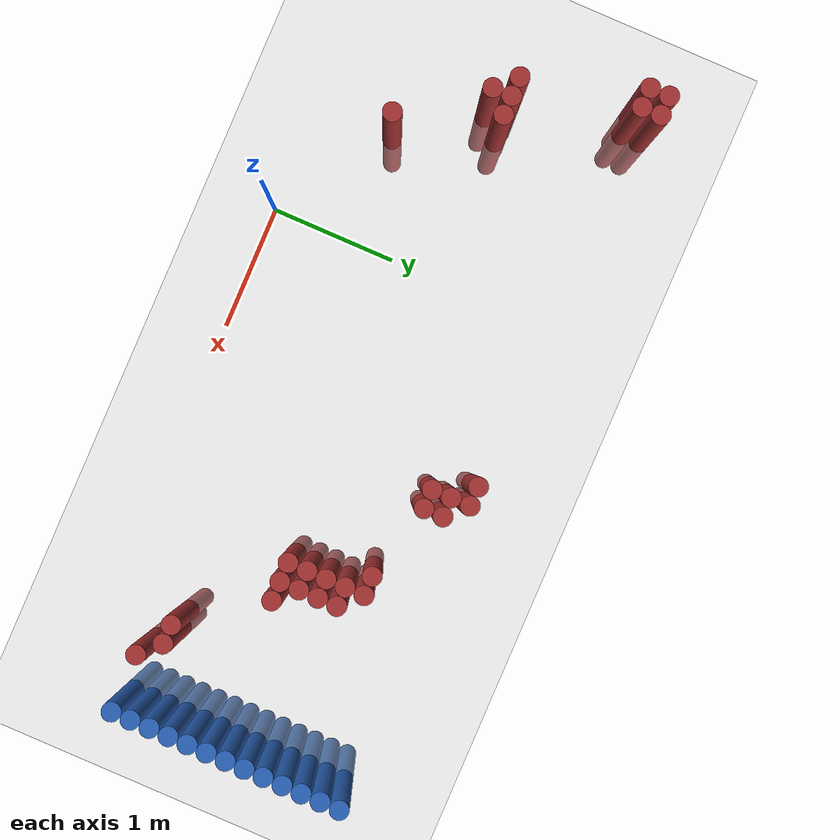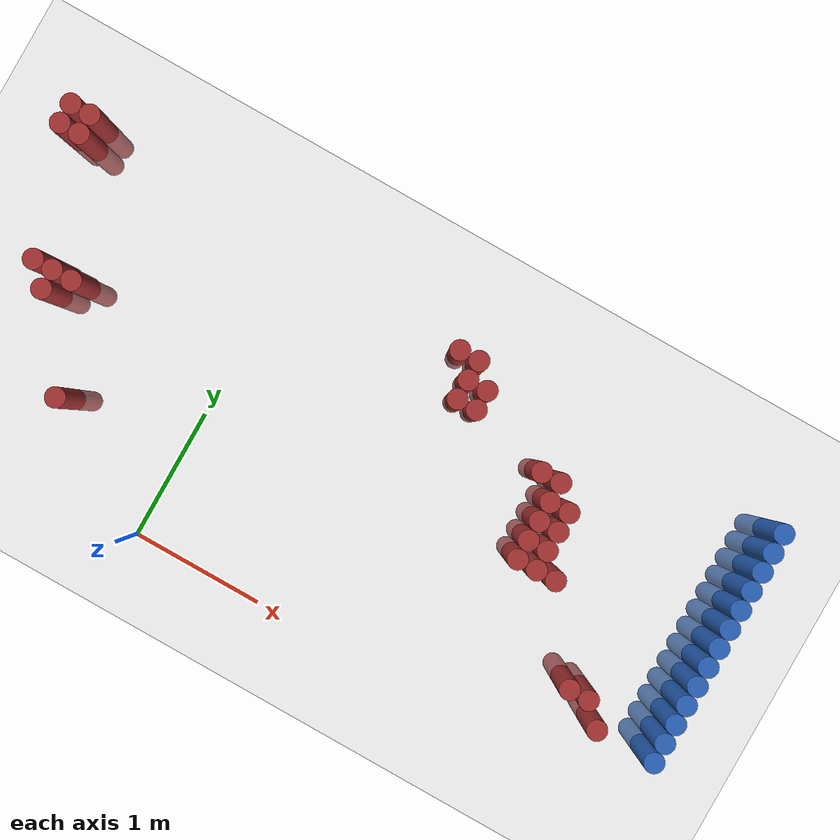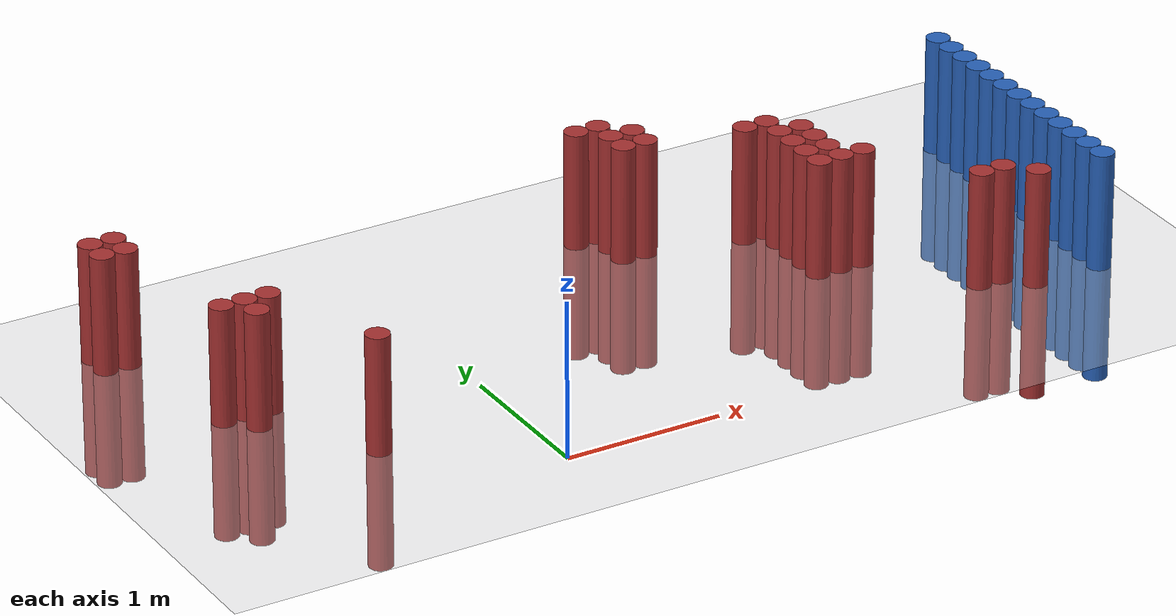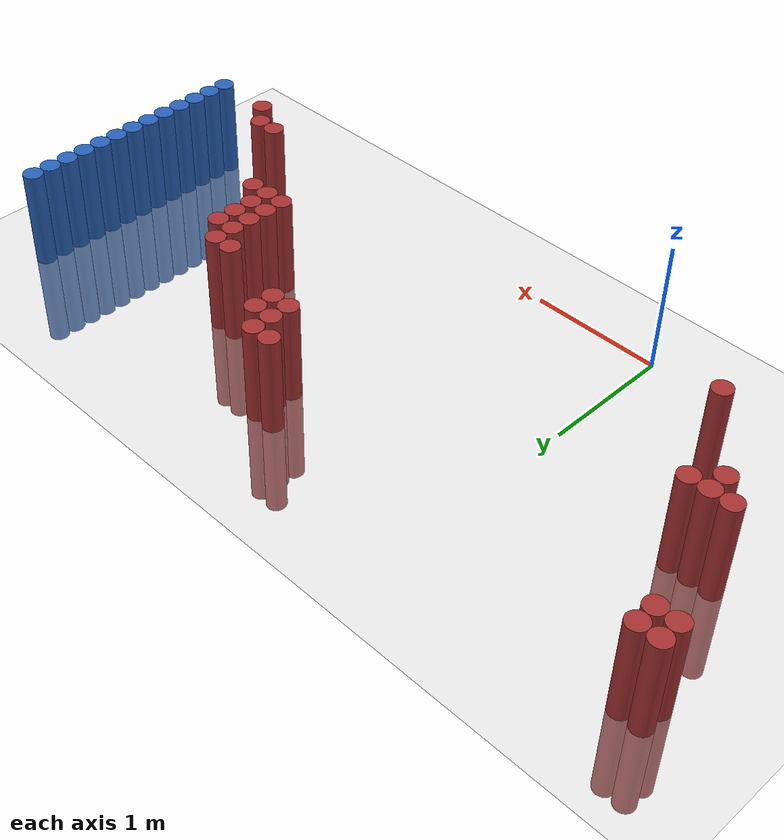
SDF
<sdf version="1.6">
 <world name="default">
  <model name="ground_plane">
   <static>1</static>
   <link name="link">
    <collision name="collision">
     <geometry><plane><normal>0 0 1</normal><size>100 100</size></plane></geometry>
     <surface><friction><ode><mu>100</mu><mu2>50</mu2></ode></friction></surface>
    </collision>
    <visual name="visual">
     <cast_shadows>0</cast_shadows>
     <geometry><plane><normal>0 0 1</normal><size>100 100</size></plane></geometry>
     <material>
      <script><uri>file://media/materials/scripts/gazebo.material</uri><name>Gazebo/Grey</name></script>
     </material>
    </visual>
   </link>
  </model>
  <model name="unit_cylinder_122">
   <static>1</static>
   <pose>3.925000 0.625000 0.000000 0.000000 0.000000 0.000000</pose>
   <link name="link">
    <inertial>
     <mass>1</mass>
     <inertia><ixx>0.145833</ixx><ixy>0</ixy><ixz>0</ixz><iyy>0.145833</iyy><iyz>0</iyz><izz>0.125</izz></inertia>
    </inertial>
    <collision name="collision">
     <geometry><cylinder><radius>0.075000</radius><length>1.5</length></cylinder></geometry>
    </collision>
    <visual name="visual">
     <geometry><cylinder><radius>0.075000</radius><length>1.5</length></cylinder></geometry>
     <material>
      <ambient>0.152000 0.379000 0.720000 1</ambient>
      <diffuse>0.152000 0.379000 0.720000 1</diffuse>
     </material>
     <material>
      <script><name>Gazebo/Grey</name><uri>file://media/materials/scripts/gazebo.material</uri></script>
     </material>
    </visual>
   </link>
  </model>
  <model name="unit_cylinder_124">
   <static>1</static>
   <pose>3.925000 0.775000 0.000000 0.000000 0.000000 0.000000</pose>
   <link name="link">
    <inertial>
     <mass>1</mass>
     <inertia><ixx>0.145833</ixx><ixy>0</ixy><ixz>0</ixz><iyy>0.145833</iyy><iyz>0</iyz><izz>0.125</izz></inertia>
    </inertial>
    <collision name="collision">
     <geometry><cylinder><radius>0.075000</radius><length>1.5</length></cylinder></geometry>
    </collision>
    <visual name="visual">
     <geometry><cylinder><radius>0.075000</radius><length>1.5</length></cylinder></geometry>
     <material>
      <ambient>0.152000 0.379000 0.720000 1</ambient>
      <diffuse>0.152000 0.379000 0.720000 1</diffuse>
     </material>
     <material>
      <script><name>Gazebo/Grey</name><uri>file://media/materials/scripts/gazebo.material</uri></script>
     </material>
    </visual>
   </link>
  </model>
  <model name="unit_cylinder_126">
   <static>1</static>
   <pose>3.925000 0.925000 0.000000 0.000000 0.000000 0.000000</pose>
   <link name="link">
    <inertial>
     <mass>1</mass>
     <inertia><ixx>0.145833</ixx><ixy>0</ixy><ixz>0</ixz><iyy>0.145833</iyy><iyz>0</iyz><izz>0.125</izz></inertia>
    </inertial>
    <collision name="collision">
     <geometry><cylinder><radius>0.075000</radius><length>1.5</length></cylinder></geometry>
    </collision>
    <visual name="visual">
     <geometry><cylinder><radius>0.075000</radius><length>1.5</length></cylinder></geometry>
     <material>
      <ambient>0.152000 0.379000 0.720000 1</ambient>
      <diffuse>0.152000 0.379000 0.720000 1</diffuse>
     </material>
     <material>
      <script><name>Gazebo/Grey</name><uri>file://media/materials/scripts/gazebo.material</uri></script>
     </material>
    </visual>
   </link>
  </model>
  <model name="unit_cylinder_128">
   <static>1</static>
   <pose>3.925000 1.075000 0.000000 0.000000 0.000000 0.000000</pose>
   <link name="link">
    <inertial>
     <mass>1</mass>
     <inertia><ixx>0.145833</ixx><ixy>0</ixy><ixz>0</ixz><iyy>0.145833</iyy><iyz>0</iyz><izz>0.125</izz></inertia>
    </inertial>
    <collision name="collision">
     <geometry><cylinder><radius>0.075000</radius><length>1.5</length></cylinder></geometry>
    </collision>
    <visual name="visual">
     <geometry><cylinder><radius>0.075000</radius><length>1.5</length></cylinder></geometry>
     <material>
      <ambient>0.152000 0.379000 0.720000 1</ambient>
      <diffuse>0.152000 0.379000 0.720000 1</diffuse>
     </material>
     <material>
      <script><name>Gazebo/Grey</name><uri>file://media/materials/scripts/gazebo.material</uri></script>
     </material>
    </visual>
   </link>
  </model>
  <model name="unit_cylinder_130">
   <static>1</static>
   <pose>3.925000 1.225000 0.000000 0.000000 0.000000 0.000000</pose>
   <link name="link">
    <inertial>
     <mass>1</mass>
     <inertia><ixx>0.145833</ixx><ixy>0</ixy><ixz>0</ixz><iyy>0.145833</iyy><iyz>0</iyz><izz>0.125</izz></inertia>
    </inertial>
    <collision name="collision">
     <geometry><cylinder><radius>0.075000</radius><length>1.5</length></cylinder></geometry>
    </collision>
    <visual name="visual">
     <geometry><cylinder><radius>0.075000</radius><length>1.5</length></cylinder></geometry>
     <material>
      <ambient>0.152000 0.379000 0.720000 1</ambient>
      <diffuse>0.152000 0.379000 0.720000 1</diffuse>
     </material>
     <material>
      <script><name>Gazebo/Grey</name><uri>file://media/materials/scripts/gazebo.material</uri></script>
     </material>
    </visual>
   </link>
  </model>
  <model name="unit_cylinder_132">
   <static>1</static>
   <pose>3.925000 1.375000 0.000000 0.000000 0.000000 0.000000</pose>
   <link name="link">
    <inertial>
     <mass>1</mass>
     <inertia><ixx>0.145833</ixx><ixy>0</ixy><ixz>0</ixz><iyy>0.145833</iyy><iyz>0</iyz><izz>0.125</izz></inertia>
    </inertial>
    <collision name="collision">
     <geometry><cylinder><radius>0.075000</radius><length>1.5</length></cylinder></geometry>
    </collision>
    <visual name="visual">
     <geometry><cylinder><radius>0.075000</radius><length>1.5</length></cylinder></geometry>
     <material>
      <ambient>0.152000 0.379000 0.720000 1</ambient>
      <diffuse>0.152000 0.379000 0.720000 1</diffuse>
     </material>
     <material>
      <script><name>Gazebo/Grey</name><uri>file://media/materials/scripts/gazebo.material</uri></script>
     </material>
    </visual>
   </link>
  </model>
  <model name="unit_cylinder_134">
   <static>1</static>
   <pose>3.925000 1.525000 0.000000 0.000000 0.000000 0.000000</pose>
   <link name="link">
    <inertial>
     <mass>1</mass>
     <inertia><ixx>0.145833</ixx><ixy>0</ixy><ixz>0</ixz><iyy>0.145833</iyy><iyz>0</iyz><izz>0.125</izz></inertia>
    </inertial>
    <collision name="collision">
     <geometry><cylinder><radius>0.075000</radius><length>1.5</length></cylinder></geometry>
    </collision>
    <visual name="visual">
     <geometry><cylinder><radius>0.075000</radius><length>1.5</length></cylinder></geometry>
     <material>
      <ambient>0.152000 0.379000 0.720000 1</ambient>
      <diffuse>0.152000 0.379000 0.720000 1</diffuse>
     </material>
     <material>
      <script><name>Gazebo/Grey</name><uri>file://media/materials/scripts/gazebo.material</uri></script>
     </material>
    </visual>
   </link>
  </model>
  <model name="unit_cylinder_136">
   <static>1</static>
   <pose>3.925000 1.675000 0.000000 0.000000 0.000000 0.000000</pose>
   <link name="link">
    <inertial>
     <mass>1</mass>
     <inertia><ixx>0.145833</ixx><ixy>0</ixy><ixz>0</ixz><iyy>0.145833</iyy><iyz>0</iyz><izz>0.125</izz></inertia>
    </inertial>
    <collision name="collision">
     <geometry><cylinder><radius>0.075000</radius><length>1.5</length></cylinder></geometry>
    </collision>
    <visual name="visual">
     <geometry><cylinder><radius>0.075000</radius><length>1.5</length></cylinder></geometry>
     <material>
      <ambient>0.152000 0.379000 0.720000 1</ambient>
      <diffuse>0.152000 0.379000 0.720000 1</diffuse>
     </material>
     <material>
      <script><name>Gazebo/Grey</name><uri>file://media/materials/scripts/gazebo.material</uri></script>
     </material>
    </visual>
   </link>
  </model>
  <model name="unit_cylinder_138">
   <static>1</static>
   <pose>3.925000 1.825000 0.000000 0.000000 0.000000 0.000000</pose>
   <link name="link">
    <inertial>
     <mass>1</mass>
     <inertia><ixx>0.145833</ixx><ixy>0</ixy><ixz>0</ixz><iyy>0.145833</iyy><iyz>0</iyz><izz>0.125</izz></inertia>
    </inertial>
    <collision name="collision">
     <geometry><cylinder><radius>0.075000</radius><length>1.5</length></cylinder></geometry>
    </collision>
    <visual name="visual">
     <geometry><cylinder><radius>0.075000</radius><length>1.5</length></cylinder></geometry>
     <material>
      <ambient>0.152000 0.379000 0.720000 1</ambient>
      <diffuse>0.152000 0.379000 0.720000 1</diffuse>
     </material>
     <material>
      <script><name>Gazebo/Grey</name><uri>file://media/materials/scripts/gazebo.material</uri></script>
     </material>
    </visual>
   </link>
  </model>
  <model name="unit_cylinder_140">
   <static>1</static>
   <pose>3.925000 1.975000 0.000000 0.000000 0.000000 0.000000</pose>
   <link name="link">
    <inertial>
     <mass>1</mass>
     <inertia><ixx>0.145833</ixx><ixy>0</ixy><ixz>0</ixz><iyy>0.145833</iyy><iyz>0</iyz><izz>0.125</izz></inertia>
    </inertial>
    <collision name="collision">
     <geometry><cylinder><radius>0.075000</radius><length>1.5</length></cylinder></geometry>
    </collision>
    <visual name="visual">
     <geometry><cylinder><radius>0.075000</radius><length>1.5</length></cylinder></geometry>
     <material>
      <ambient>0.152000 0.379000 0.720000 1</ambient>
      <diffuse>0.152000 0.379000 0.720000 1</diffuse>
     </material>
     <material>
      <script><name>Gazebo/Grey</name><uri>file://media/materials/scripts/gazebo.material</uri></script>
     </material>
    </visual>
   </link>
  </model>
  <model name="unit_cylinder_142">
   <static>1</static>
   <pose>3.925000 2.125000 0.000000 0.000000 0.000000 0.000000</pose>
   <link name="link">
    <inertial>
     <mass>1</mass>
     <inertia><ixx>0.145833</ixx><ixy>0</ixy><ixz>0</ixz><iyy>0.145833</iyy><iyz>0</iyz><izz>0.125</izz></inertia>
    </inertial>
    <collision name="collision">
     <geometry><cylinder><radius>0.075000</radius><length>1.5</length></cylinder></geometry>
    </collision>
    <visual name="visual">
     <geometry><cylinder><radius>0.075000</radius><length>1.5</length></cylinder></geometry>
     <material>
      <ambient>0.152000 0.379000 0.720000 1</ambient>
      <diffuse>0.152000 0.379000 0.720000 1</diffuse>
     </material>
     <material>
      <script><name>Gazebo/Grey</name><uri>file://media/materials/scripts/gazebo.material</uri></script>
     </material>
    </visual>
   </link>
  </model>
  <model name="unit_cylinder_144">
   <static>1</static>
   <pose>3.925000 2.275000 0.000000 0.000000 0.000000 0.000000</pose>
   <link name="link">
    <inertial>
     <mass>1</mass>
     <inertia><ixx>0.145833</ixx><ixy>0</ixy><ixz>0</ixz><iyy>0.145833</iyy><iyz>0</iyz><izz>0.125</izz></inertia>
    </inertial>
    <collision name="collision">
     <geometry><cylinder><radius>0.075000</radius><length>1.5</length></cylinder></geometry>
    </collision>
    <visual name="visual">
     <geometry><cylinder><radius>0.075000</radius><length>1.5</length></cylinder></geometry>
     <material>
      <ambient>0.152000 0.379000 0.720000 1</ambient>
      <diffuse>0.152000 0.379000 0.720000 1</diffuse>
     </material>
     <material>
      <script><name>Gazebo/Grey</name><uri>file://media/materials/scripts/gazebo.material</uri></script>
     </material>
    </visual>
   </link>
  </model>
  <model name="unit_cylinder_305">
   <static>1</static>
   <pose>-1.775000 2.275000 0.000000 0.000000 0.000000 0.000000</pose>
   <link name="link">
    <inertial>
     <mass>1</mass>
     <inertia><ixx>0.145833</ixx><ixy>0</ixy><ixz>0</ixz><iyy>0.145833</iyy><iyz>0</iyz><izz>0.125</izz></inertia>
    </inertial>
    <collision name="collision">
     <geometry><cylinder><radius>0.075000</radius><length>1.5</length></cylinder></geometry>
    </collision>
    <visual name="visual">
     <geometry><cylinder><radius>0.075000</radius><length>1.5</length></cylinder></geometry>
     <material>
      <ambient>0.648000 0.192000 0.192000 1</ambient>
      <diffuse>0.648000 0.192000 0.192000 1</diffuse>
     </material>
     <material>
      <script><name>Gazebo/Grey</name><uri>file://media/materials/scripts/gazebo.material</uri></script>
     </material>
    </visual>
   </link>
  </model>
  <model name="unit_cylinder_306">
   <static>1</static>
   <pose>-1.775000 2.425000 0.000000 0.000000 0.000000 0.000000</pose>
   <link name="link">
    <inertial>
     <mass>1</mass>
     <inertia><ixx>0.145833</ixx><ixy>0</ixy><ixz>0</ixz><iyy>0.145833</iyy><iyz>0</iyz><izz>0.125</izz></inertia>
    </inertial>
    <collision name="collision">
     <geometry><cylinder><radius>0.075000</radius><length>1.5</length></cylinder></geometry>
    </collision>
    <visual name="visual">
     <geometry><cylinder><radius>0.075000</radius><length>1.5</length></cylinder></geometry>
     <material>
      <ambient>0.648000 0.192000 0.192000 1</ambient>
      <diffuse>0.648000 0.192000 0.192000 1</diffuse>
     </material>
     <material>
      <script><name>Gazebo/Grey</name><uri>file://media/materials/scripts/gazebo.material</uri></script>
     </material>
    </visual>
   </link>
  </model>
  <model name="unit_cylinder_310">
   <static>1</static>
   <pose>-1.625000 2.275000 0.000000 0.000000 0.000000 0.000000</pose>
   <link name="link">
    <inertial>
     <mass>1</mass>
     <inertia><ixx>0.145833</ixx><ixy>0</ixy><ixz>0</ixz><iyy>0.145833</iyy><iyz>0</iyz><izz>0.125</izz></inertia>
    </inertial>
    <collision name="collision">
     <geometry><cylinder><radius>0.075000</radius><length>1.5</length></cylinder></geometry>
    </collision>
    <visual name="visual">
     <geometry><cylinder><radius>0.075000</radius><length>1.5</length></cylinder></geometry>
     <material>
      <ambient>0.648000 0.192000 0.192000 1</ambient>
      <diffuse>0.648000 0.192000 0.192000 1</diffuse>
     </material>
     <material>
      <script><name>Gazebo/Grey</name><uri>file://media/materials/scripts/gazebo.material</uri></script>
     </material>
    </visual>
   </link>
  </model>
  <model name="unit_cylinder_311">
   <static>1</static>
   <pose>-1.625000 2.425000 0.000000 0.000000 0.000000 0.000000</pose>
   <link name="link">
    <inertial>
     <mass>1</mass>
     <inertia><ixx>0.145833</ixx><ixy>0</ixy><ixz>0</ixz><iyy>0.145833</iyy><iyz>0</iyz><izz>0.125</izz></inertia>
    </inertial>
    <collision name="collision">
     <geometry><cylinder><radius>0.075000</radius><length>1.5</length></cylinder></geometry>
    </collision>
    <visual name="visual">
     <geometry><cylinder><radius>0.075000</radius><length>1.5</length></cylinder></geometry>
     <material>
      <ambient>0.648000 0.192000 0.192000 1</ambient>
      <diffuse>0.648000 0.192000 0.192000 1</diffuse>
     </material>
     <material>
      <script><name>Gazebo/Grey</name><uri>file://media/materials/scripts/gazebo.material</uri></script>
     </material>
    </visual>
   </link>
  </model>
  <model name="unit_cylinder_316">
   <static>1</static>
   <pose>-1.475000 1.375000 0.000000 0.000000 0.000000 0.000000</pose>
   <link name="link">
    <inertial>
     <mass>1</mass>
     <inertia><ixx>0.145833</ixx><ixy>0</ixy><ixz>0</ixz><iyy>0.145833</iyy><iyz>0</iyz><izz>0.125</izz></inertia>
    </inertial>
    <collision name="collision">
     <geometry><cylinder><radius>0.075000</radius><length>1.5</length></cylinder></geometry>
    </collision>
    <visual name="visual">
     <geometry><cylinder><radius>0.075000</radius><length>1.5</length></cylinder></geometry>
     <material>
      <ambient>0.648000 0.192000 0.192000 1</ambient>
      <diffuse>0.648000 0.192000 0.192000 1</diffuse>
     </material>
     <material>
      <script><name>Gazebo/Grey</name><uri>file://media/materials/scripts/gazebo.material</uri></script>
     </material>
    </visual>
   </link>
  </model>
  <model name="unit_cylinder_319">
   <static>1</static>
   <pose>-1.325000 1.225000 0.000000 0.000000 0.000000 0.000000</pose>
   <link name="link">
    <inertial>
     <mass>1</mass>
     <inertia><ixx>0.145833</ixx><ixy>0</ixy><ixz>0</ixz><iyy>0.145833</iyy><iyz>0</iyz><izz>0.125</izz></inertia>
    </inertial>
    <collision name="collision">
     <geometry><cylinder><radius>0.075000</radius><length>1.5</length></cylinder></geometry>
    </collision>
    <visual name="visual">
     <geometry><cylinder><radius>0.075000</radius><length>1.5</length></cylinder></geometry>
     <material>
      <ambient>0.648000 0.192000 0.192000 1</ambient>
      <diffuse>0.648000 0.192000 0.192000 1</diffuse>
     </material>
     <material>
      <script><name>Gazebo/Grey</name><uri>file://media/materials/scripts/gazebo.material</uri></script>
     </material>
    </visual>
   </link>
  </model>
  <model name="unit_cylinder_320">
   <static>1</static>
   <pose>-1.325000 1.375000 0.000000 0.000000 0.000000 0.000000</pose>
   <link name="link">
    <inertial>
     <mass>1</mass>
     <inertia><ixx>0.145833</ixx><ixy>0</ixy><ixz>0</ixz><iyy>0.145833</iyy><iyz>0</iyz><izz>0.125</izz></inertia>
    </inertial>
    <collision name="collision">
     <geometry><cylinder><radius>0.075000</radius><length>1.5</length></cylinder></geometry>
    </collision>
    <visual name="visual">
     <geometry><cylinder><radius>0.075000</radius><length>1.5</length></cylinder></geometry>
     <material>
      <ambient>0.648000 0.192000 0.192000 1</ambient>
      <diffuse>0.648000 0.192000 0.192000 1</diffuse>
     </material>
     <material>
      <script><name>Gazebo/Grey</name><uri>file://media/materials/scripts/gazebo.material</uri></script>
     </material>
    </visual>
   </link>
  </model>
  <model name="unit_cylinder_321">
   <static>1</static>
   <pose>-1.175000 1.375000 0.000000 0.000000 0.000000 0.000000</pose>
   <link name="link">
    <inertial>
     <mass>1</mass>
     <inertia><ixx>0.145833</ixx><ixy>0</ixy><ixz>0</ixz><iyy>0.145833</iyy><iyz>0</iyz><izz>0.125</izz></inertia>
    </inertial>
    <collision name="collision">
     <geometry><cylinder><radius>0.075000</radius><length>1.5</length></cylinder></geometry>
    </collision>
    <visual name="visual">
     <geometry><cylinder><radius>0.075000</radius><length>1.5</length></cylinder></geometry>
     <material>
      <ambient>0.648000 0.192000 0.192000 1</ambient>
      <diffuse>0.648000 0.192000 0.192000 1</diffuse>
     </material>
     <material>
      <script><name>Gazebo/Grey</name><uri>file://media/materials/scripts/gazebo.material</uri></script>
     </material>
    </visual>
   </link>
  </model>
  <model name="unit_cylinder_324">
   <static>1</static>
   <pose>-0.875000 0.625000 0.000000 0.000000 0.000000 0.000000</pose>
   <link name="link">
    <inertial>
     <mass>1</mass>
     <inertia><ixx>0.145833</ixx><ixy>0</ixy><ixz>0</ixz><iyy>0.145833</iyy><iyz>0</iyz><izz>0.125</izz></inertia>
    </inertial>
    <collision name="collision">
     <geometry><cylinder><radius>0.075000</radius><length>1.5</length></cylinder></geometry>
    </collision>
    <visual name="visual">
     <geometry><cylinder><radius>0.075000</radius><length>1.5</length></cylinder></geometry>
     <material>
      <ambient>0.648000 0.192000 0.192000 1</ambient>
      <diffuse>0.648000 0.192000 0.192000 1</diffuse>
     </material>
     <material>
      <script><name>Gazebo/Grey</name><uri>file://media/materials/scripts/gazebo.material</uri></script>
     </material>
    </visual>
   </link>
  </model>
  <model name="unit_cylinder_364">
   <static>1</static>
   <pose>1.375000 2.275000 0.000000 0.000000 0.000000 0.000000</pose>
   <link name="link">
    <inertial>
     <mass>1</mass>
     <inertia><ixx>0.145833</ixx><ixy>0</ixy><ixz>0</ixz><iyy>0.145833</iyy><iyz>0</iyz><izz>0.125</izz></inertia>
    </inertial>
    <collision name="collision">
     <geometry><cylinder><radius>0.075000</radius><length>1.5</length></cylinder></geometry>
    </collision>
    <visual name="visual">
     <geometry><cylinder><radius>0.075000</radius><length>1.5</length></cylinder></geometry>
     <material>
      <ambient>0.648000 0.192000 0.192000 1</ambient>
      <diffuse>0.648000 0.192000 0.192000 1</diffuse>
     </material>
     <material>
      <script><name>Gazebo/Grey</name><uri>file://media/materials/scripts/gazebo.material</uri></script>
     </material>
    </visual>
   </link>
  </model>
  <model name="unit_cylinder_370">
   <static>1</static>
   <pose>1.525000 1.975000 0.000000 0.000000 0.000000 0.000000</pose>
   <link name="link">
    <inertial>
     <mass>1</mass>
     <inertia><ixx>0.145833</ixx><ixy>0</ixy><ixz>0</ixz><iyy>0.145833</iyy><iyz>0</iyz><izz>0.125</izz></inertia>
    </inertial>
    <collision name="collision">
     <geometry><cylinder><radius>0.075000</radius><length>1.5</length></cylinder></geometry>
    </collision>
    <visual name="visual">
     <geometry><cylinder><radius>0.075000</radius><length>1.5</length></cylinder></geometry>
     <material>
      <ambient>0.648000 0.192000 0.192000 1</ambient>
      <diffuse>0.648000 0.192000 0.192000 1</diffuse>
     </material>
     <material>
      <script><name>Gazebo/Grey</name><uri>file://media/materials/scripts/gazebo.material</uri></script>
     </material>
    </visual>
   </link>
  </model>
  <model name="unit_cylinder_371">
   <static>1</static>
   <pose>1.525000 2.125000 0.000000 0.000000 0.000000 0.000000</pose>
   <link name="link">
    <inertial>
     <mass>1</mass>
     <inertia><ixx>0.145833</ixx><ixy>0</ixy><ixz>0</ixz><iyy>0.145833</iyy><iyz>0</iyz><izz>0.125</izz></inertia>
    </inertial>
    <collision name="collision">
     <geometry><cylinder><radius>0.075000</radius><length>1.5</length></cylinder></geometry>
    </collision>
    <visual name="visual">
     <geometry><cylinder><radius>0.075000</radius><length>1.5</length></cylinder></geometry>
     <material>
      <ambient>0.648000 0.192000 0.192000 1</ambient>
      <diffuse>0.648000 0.192000 0.192000 1</diffuse>
     </material>
     <material>
      <script><name>Gazebo/Grey</name><uri>file://media/materials/scripts/gazebo.material</uri></script>
     </material>
    </visual>
   </link>
  </model>
  <model name="unit_cylinder_372">
   <static>1</static>
   <pose>1.525000 2.275000 0.000000 0.000000 0.000000 0.000000</pose>
   <link name="link">
    <inertial>
     <mass>1</mass>
     <inertia><ixx>0.145833</ixx><ixy>0</ixy><ixz>0</ixz><iyy>0.145833</iyy><iyz>0</iyz><izz>0.125</izz></inertia>
    </inertial>
    <collision name="collision">
     <geometry><cylinder><radius>0.075000</radius><length>1.5</length></cylinder></geometry>
    </collision>
    <visual name="visual">
     <geometry><cylinder><radius>0.075000</radius><length>1.5</length></cylinder></geometry>
     <material>
      <ambient>0.648000 0.192000 0.192000 1</ambient>
      <diffuse>0.648000 0.192000 0.192000 1</diffuse>
     </material>
     <material>
      <script><name>Gazebo/Grey</name><uri>file://media/materials/scripts/gazebo.material</uri></script>
     </material>
    </visual>
   </link>
  </model>
  <model name="unit_cylinder_376">
   <static>1</static>
   <pose>1.675000 1.975000 0.000000 0.000000 0.000000 0.000000</pose>
   <link name="link">
    <inertial>
     <mass>1</mass>
     <inertia><ixx>0.145833</ixx><ixy>0</ixy><ixz>0</ixz><iyy>0.145833</iyy><iyz>0</iyz><izz>0.125</izz></inertia>
    </inertial>
    <collision name="collision">
     <geometry><cylinder><radius>0.075000</radius><length>1.5</length></cylinder></geometry>
    </collision>
    <visual name="visual">
     <geometry><cylinder><radius>0.075000</radius><length>1.5</length></cylinder></geometry>
     <material>
      <ambient>0.648000 0.192000 0.192000 1</ambient>
      <diffuse>0.648000 0.192000 0.192000 1</diffuse>
     </material>
     <material>
      <script><name>Gazebo/Grey</name><uri>file://media/materials/scripts/gazebo.material</uri></script>
     </material>
    </visual>
   </link>
  </model>
  <model name="unit_cylinder_377">
   <static>1</static>
   <pose>1.675000 2.125000 0.000000 0.000000 0.000000 0.000000</pose>
   <link name="link">
    <inertial>
     <mass>1</mass>
     <inertia><ixx>0.145833</ixx><ixy>0</ixy><ixz>0</ixz><iyy>0.145833</iyy><iyz>0</iyz><izz>0.125</izz></inertia>
    </inertial>
    <collision name="collision">
     <geometry><cylinder><radius>0.075000</radius><length>1.5</length></cylinder></geometry>
    </collision>
    <visual name="visual">
     <geometry><cylinder><radius>0.075000</radius><length>1.5</length></cylinder></geometry>
     <material>
      <ambient>0.648000 0.192000 0.192000 1</ambient>
      <diffuse>0.648000 0.192000 0.192000 1</diffuse>
     </material>
     <material>
      <script><name>Gazebo/Grey</name><uri>file://media/materials/scripts/gazebo.material</uri></script>
     </material>
    </visual>
   </link>
  </model>
  <model name="unit_cylinder_387">
   <static>1</static>
   <pose>2.275000 1.825000 0.000000 0.000000 0.000000 0.000000</pose>
   <link name="link">
    <inertial>
     <mass>1</mass>
     <inertia><ixx>0.145833</ixx><ixy>0</ixy><ixz>0</ixz><iyy>0.145833</iyy><iyz>0</iyz><izz>0.125</izz></inertia>
    </inertial>
    <collision name="collision">
     <geometry><cylinder><radius>0.075000</radius><length>1.5</length></cylinder></geometry>
    </collision>
    <visual name="visual">
     <geometry><cylinder><radius>0.075000</radius><length>1.5</length></cylinder></geometry>
     <material>
      <ambient>0.648000 0.192000 0.192000 1</ambient>
      <diffuse>0.648000 0.192000 0.192000 1</diffuse>
     </material>
     <material>
      <script><name>Gazebo/Grey</name><uri>file://media/materials/scripts/gazebo.material</uri></script>
     </material>
    </visual>
   </link>
  </model>
  <model name="unit_cylinder_389">
   <static>1</static>
   <pose>2.425000 1.225000 0.000000 0.000000 0.000000 0.000000</pose>
   <link name="link">
    <inertial>
     <mass>1</mass>
     <inertia><ixx>0.145833</ixx><ixy>0</ixy><ixz>0</ixz><iyy>0.145833</iyy><iyz>0</iyz><izz>0.125</izz></inertia>
    </inertial>
    <collision name="collision">
     <geometry><cylinder><radius>0.075000</radius><length>1.5</length></cylinder></geometry>
    </collision>
    <visual name="visual">
     <geometry><cylinder><radius>0.075000</radius><length>1.5</length></cylinder></geometry>
     <material>
      <ambient>0.648000 0.192000 0.192000 1</ambient>
      <diffuse>0.648000 0.192000 0.192000 1</diffuse>
     </material>
     <material>
      <script><name>Gazebo/Grey</name><uri>file://media/materials/scripts/gazebo.material</uri></script>
     </material>
    </visual>
   </link>
  </model>
  <model name="unit_cylinder_390">
   <static>1</static>
   <pose>2.425000 1.375000 0.000000 0.000000 0.000000 0.000000</pose>
   <link name="link">
    <inertial>
     <mass>1</mass>
     <inertia><ixx>0.145833</ixx><ixy>0</ixy><ixz>0</ixz><iyy>0.145833</iyy><iyz>0</iyz><izz>0.125</izz></inertia>
    </inertial>
    <collision name="collision">
     <geometry><cylinder><radius>0.075000</radius><length>1.5</length></cylinder></geometry>
    </collision>
    <visual name="visual">
     <geometry><cylinder><radius>0.075000</radius><length>1.5</length></cylinder></geometry>
     <material>
      <ambient>0.648000 0.192000 0.192000 1</ambient>
      <diffuse>0.648000 0.192000 0.192000 1</diffuse>
     </material>
     <material>
      <script><name>Gazebo/Grey</name><uri>file://media/materials/scripts/gazebo.material</uri></script>
     </material>
    </visual>
   </link>
  </model>
  <model name="unit_cylinder_391">
   <static>1</static>
   <pose>2.425000 1.525000 0.000000 0.000000 0.000000 0.000000</pose>
   <link name="link">
    <inertial>
     <mass>1</mass>
     <inertia><ixx>0.145833</ixx><ixy>0</ixy><ixz>0</ixz><iyy>0.145833</iyy><iyz>0</iyz><izz>0.125</izz></inertia>
    </inertial>
    <collision name="collision">
     <geometry><cylinder><radius>0.075000</radius><length>1.5</length></cylinder></geometry>
    </collision>
    <visual name="visual">
     <geometry><cylinder><radius>0.075000</radius><length>1.5</length></cylinder></geometry>
     <material>
      <ambient>0.648000 0.192000 0.192000 1</ambient>
      <diffuse>0.648000 0.192000 0.192000 1</diffuse>
     </material>
     <material>
      <script><name>Gazebo/Grey</name><uri>file://media/materials/scripts/gazebo.material</uri></script>
     </material>
    </visual>
   </link>
  </model>
  <model name="unit_cylinder_392">
   <static>1</static>
   <pose>2.425000 1.675000 0.000000 0.000000 0.000000 0.000000</pose>
   <link name="link">
    <inertial>
     <mass>1</mass>
     <inertia><ixx>0.145833</ixx><ixy>0</ixy><ixz>0</ixz><iyy>0.145833</iyy><iyz>0</iyz><izz>0.125</izz></inertia>
    </inertial>
    <collision name="collision">
     <geometry><cylinder><radius>0.075000</radius><length>1.5</length></cylinder></geometry>
    </collision>
    <visual name="visual">
     <geometry><cylinder><radius>0.075000</radius><length>1.5</length></cylinder></geometry>
     <material>
      <ambient>0.648000 0.192000 0.192000 1</ambient>
      <diffuse>0.648000 0.192000 0.192000 1</diffuse>
     </material>
     <material>
      <script><name>Gazebo/Grey</name><uri>file://media/materials/scripts/gazebo.material</uri></script>
     </material>
    </visual>
   </link>
  </model>
  <model name="unit_cylinder_393">
   <static>1</static>
   <pose>2.425000 1.825000 0.000000 0.000000 0.000000 0.000000</pose>
   <link name="link">
    <inertial>
     <mass>1</mass>
     <inertia><ixx>0.145833</ixx><ixy>0</ixy><ixz>0</ixz><iyy>0.145833</iyy><iyz>0</iyz><izz>0.125</izz></inertia>
    </inertial>
    <collision name="collision">
     <geometry><cylinder><radius>0.075000</radius><length>1.5</length></cylinder></geometry>
    </collision>
    <visual name="visual">
     <geometry><cylinder><radius>0.075000</radius><length>1.5</length></cylinder></geometry>
     <material>
      <ambient>0.648000 0.192000 0.192000 1</ambient>
      <diffuse>0.648000 0.192000 0.192000 1</diffuse>
     </material>
     <material>
      <script><name>Gazebo/Grey</name><uri>file://media/materials/scripts/gazebo.material</uri></script>
     </material>
    </visual>
   </link>
  </model>
  <model name="unit_cylinder_396">
   <static>1</static>
   <pose>2.575000 1.225000 0.000000 0.000000 0.000000 0.000000</pose>
   <link name="link">
    <inertial>
     <mass>1</mass>
     <inertia><ixx>0.145833</ixx><ixy>0</ixy><ixz>0</ixz><iyy>0.145833</iyy><iyz>0</iyz><izz>0.125</izz></inertia>
    </inertial>
    <collision name="collision">
     <geometry><cylinder><radius>0.075000</radius><length>1.5</length></cylinder></geometry>
    </collision>
    <visual name="visual">
     <geometry><cylinder><radius>0.075000</radius><length>1.5</length></cylinder></geometry>
     <material>
      <ambient>0.648000 0.192000 0.192000 1</ambient>
      <diffuse>0.648000 0.192000 0.192000 1</diffuse>
     </material>
     <material>
      <script><name>Gazebo/Grey</name><uri>file://media/materials/scripts/gazebo.material</uri></script>
     </material>
    </visual>
   </link>
  </model>
  <model name="unit_cylinder_397">
   <static>1</static>
   <pose>2.575000 1.375000 0.000000 0.000000 0.000000 0.000000</pose>
   <link name="link">
    <inertial>
     <mass>1</mass>
     <inertia><ixx>0.145833</ixx><ixy>0</ixy><ixz>0</ixz><iyy>0.145833</iyy><iyz>0</iyz><izz>0.125</izz></inertia>
    </inertial>
    <collision name="collision">
     <geometry><cylinder><radius>0.075000</radius><length>1.5</length></cylinder></geometry>
    </collision>
    <visual name="visual">
     <geometry><cylinder><radius>0.075000</radius><length>1.5</length></cylinder></geometry>
     <material>
      <ambient>0.648000 0.192000 0.192000 1</ambient>
      <diffuse>0.648000 0.192000 0.192000 1</diffuse>
     </material>
     <material>
      <script><name>Gazebo/Grey</name><uri>file://media/materials/scripts/gazebo.material</uri></script>
     </material>
    </visual>
   </link>
  </model>
  <model name="unit_cylinder_398">
   <static>1</static>
   <pose>2.575000 1.525000 0.000000 0.000000 0.000000 0.000000</pose>
   <link name="link">
    <inertial>
     <mass>1</mass>
     <inertia><ixx>0.145833</ixx><ixy>0</ixy><ixz>0</ixz><iyy>0.145833</iyy><iyz>0</iyz><izz>0.125</izz></inertia>
    </inertial>
    <collision name="collision">
     <geometry><cylinder><radius>0.075000</radius><length>1.5</length></cylinder></geometry>
    </collision>
    <visual name="visual">
     <geometry><cylinder><radius>0.075000</radius><length>1.5</length></cylinder></geometry>
     <material>
      <ambient>0.648000 0.192000 0.192000 1</ambient>
      <diffuse>0.648000 0.192000 0.192000 1</diffuse>
     </material>
     <material>
      <script><name>Gazebo/Grey</name><uri>file://media/materials/scripts/gazebo.material</uri></script>
     </material>
    </visual>
   </link>
  </model>
  <model name="unit_cylinder_399">
   <static>1</static>
   <pose>2.575000 1.675000 0.000000 0.000000 0.000000 0.000000</pose>
   <link name="link">
    <inertial>
     <mass>1</mass>
     <inertia><ixx>0.145833</ixx><ixy>0</ixy><ixz>0</ixz><iyy>0.145833</iyy><iyz>0</iyz><izz>0.125</izz></inertia>
    </inertial>
    <collision name="collision">
     <geometry><cylinder><radius>0.075000</radius><length>1.5</length></cylinder></geometry>
    </collision>
    <visual name="visual">
     <geometry><cylinder><radius>0.075000</radius><length>1.5</length></cylinder></geometry>
     <material>
      <ambient>0.648000 0.192000 0.192000 1</ambient>
      <diffuse>0.648000 0.192000 0.192000 1</diffuse>
     </material>
     <material>
      <script><name>Gazebo/Grey</name><uri>file://media/materials/scripts/gazebo.material</uri></script>
     </material>
    </visual>
   </link>
  </model>
  <model name="unit_cylinder_403">
   <static>1</static>
   <pose>2.725000 1.225000 0.000000 0.000000 0.000000 0.000000</pose>
   <link name="link">
    <inertial>
     <mass>1</mass>
     <inertia><ixx>0.145833</ixx><ixy>0</ixy><ixz>0</ixz><iyy>0.145833</iyy><iyz>0</iyz><izz>0.125</izz></inertia>
    </inertial>
    <collision name="collision">
     <geometry><cylinder><radius>0.075000</radius><length>1.5</length></cylinder></geometry>
    </collision>
    <visual name="visual">
     <geometry><cylinder><radius>0.075000</radius><length>1.5</length></cylinder></geometry>
     <material>
      <ambient>0.648000 0.192000 0.192000 1</ambient>
      <diffuse>0.648000 0.192000 0.192000 1</diffuse>
     </material>
     <material>
      <script><name>Gazebo/Grey</name><uri>file://media/materials/scripts/gazebo.material</uri></script>
     </material>
    </visual>
   </link>
  </model>
  <model name="unit_cylinder_410">
   <static>1</static>
   <pose>3.175000 0.625000 0.000000 0.000000 0.000000 0.000000</pose>
   <link name="link">
    <inertial>
     <mass>1</mass>
     <inertia><ixx>0.145833</ixx><ixy>0</ixy><ixz>0</ixz><iyy>0.145833</iyy><iyz>0</iyz><izz>0.125</izz></inertia>
    </inertial>
    <collision name="collision">
     <geometry><cylinder><radius>0.075000</radius><length>1.5</length></cylinder></geometry>
    </collision>
    <visual name="visual">
     <geometry><cylinder><radius>0.075000</radius><length>1.5</length></cylinder></geometry>
     <material>
      <ambient>0.648000 0.192000 0.192000 1</ambient>
      <diffuse>0.648000 0.192000 0.192000 1</diffuse>
     </material>
     <material>
      <script><name>Gazebo/Grey</name><uri>file://media/materials/scripts/gazebo.material</uri></script>
     </material>
    </visual>
   </link>
  </model>
  <model name="unit_cylinder_415">
   <static>1</static>
   <pose>3.325000 0.625000 0.000000 0.000000 0.000000 0.000000</pose>
   <link name="link">
    <inertial>
     <mass>1</mass>
     <inertia><ixx>0.145833</ixx><ixy>0</ixy><ixz>0</ixz><iyy>0.145833</iyy><iyz>0</iyz><izz>0.125</izz></inertia>
    </inertial>
    <collision name="collision">
     <geometry><cylinder><radius>0.075000</radius><length>1.5</length></cylinder></geometry>
    </collision>
    <visual name="visual">
     <geometry><cylinder><radius>0.075000</radius><length>1.5</length></cylinder></geometry>
     <material>
      <ambient>0.648000 0.192000 0.192000 1</ambient>
      <diffuse>0.648000 0.192000 0.192000 1</diffuse>
     </material>
     <material>
      <script><name>Gazebo/Grey</name><uri>file://media/materials/scripts/gazebo.material</uri></script>
     </material>
    </visual>
   </link>
  </model>
  <model name="unit_cylinder_418">
   <static>1</static>
   <pose>3.475000 0.475000 0.000000 0.000000 0.000000 0.000000</pose>
   <link name="link">
    <inertial>
     <mass>1</mass>
     <inertia><ixx>0.145833</ixx><ixy>0</ixy><ixz>0</ixz><iyy>0.145833</iyy><iyz>0</iyz><izz>0.125</izz></inertia>
    </inertial>
    <collision name="collision">
     <geometry><cylinder><radius>0.075000</radius><length>1.5</length></cylinder></geometry>
    </collision>
    <visual name="visual">
     <geometry><cylinder><radius>0.075000</radius><length>1.5</length></cylinder></geometry>
     <material>
      <ambient>0.648000 0.192000 0.192000 1</ambient>
      <diffuse>0.648000 0.192000 0.192000 1</diffuse>
     </material>
     <material>
      <script><name>Gazebo/Grey</name><uri>file://media/materials/scripts/gazebo.material</uri></script>
     </material>
    </visual>
   </link>
  </model>
  <model name="unit_cylinder_455">
   <static>1</static>
   <pose>3.925000 0.475000 0.000000 0.000000 0.000000 0.000000</pose>
   <link name="link">
    <inertial>
     <mass>1</mass>
     <inertia><ixx>0.145833</ixx><ixy>0</ixy><ixz>0</ixz><iyy>0.145833</iyy><iyz>0</iyz><izz>0.125</izz></inertia>
    </inertial>
    <collision name="collision">
     <geometry><cylinder><radius>0.075000</radius><length>1.5</length></cylinder></geometry>
    </collision>
    <visual name="visual">
     <geometry><cylinder><radius>0.075000</radius><length>1.5</length></cylinder></geometry>
     <material>
      <ambient>0.152000 0.379000 0.720000 1</ambient>
      <diffuse>0.152000 0.379000 0.720000 1</diffuse>
     </material>
     <material>
      <script><name>Gazebo/Grey</name><uri>file://media/materials/scripts/gazebo.material</uri></script>
     </material>
    </visual>
   </link>
  </model>
  <model name="unit_cylinder_456">
   <static>1</static>
   <pose>3.925000 0.625000 0.000000 0.000000 0.000000 0.000000</pose>
   <link name="link">
    <inertial>
     <mass>1</mass>
     <inertia><ixx>0.145833</ixx><ixy>0</ixy><ixz>0</ixz><iyy>0.145833</iyy><iyz>0</iyz><izz>0.125</izz></inertia>
    </inertial>
    <collision name="collision">
     <geometry><cylinder><radius>0.075000</radius><length>1.5</length></cylinder></geometry>
    </collision>
    <visual name="visual">
     <geometry><cylinder><radius>0.075000</radius><length>1.5</length></cylinder></geometry>
     <material>
      <ambient>0.152000 0.379000 0.720000 1</ambient>
      <diffuse>0.152000 0.379000 0.720000 1</diffuse>
     </material>
     <material>
      <script><name>Gazebo/Grey</name><uri>file://media/materials/scripts/gazebo.material</uri></script>
     </material>
    </visual>
   </link>
  </model>
  <model name="unit_cylinder_457">
   <static>1</static>
   <pose>3.925000 0.775000 0.000000 0.000000 0.000000 0.000000</pose>
   <link name="link">
    <inertial>
     <mass>1</mass>
     <inertia><ixx>0.145833</ixx><ixy>0</ixy><ixz>0</ixz><iyy>0.145833</iyy><iyz>0</iyz><izz>0.125</izz></inertia>
    </inertial>
    <collision name="collision">
     <geometry><cylinder><radius>0.075000</radius><length>1.5</length></cylinder></geometry>
    </collision>
    <visual name="visual">
     <geometry><cylinder><radius>0.075000</radius><length>1.5</length></cylinder></geometry>
     <material>
      <ambient>0.152000 0.379000 0.720000 1</ambient>
      <diffuse>0.152000 0.379000 0.720000 1</diffuse>
     </material>
     <material>
      <script><name>Gazebo/Grey</name><uri>file://media/materials/scripts/gazebo.material</uri></script>
     </material>
    </visual>
   </link>
  </model>
  <model name="unit_cylinder_458">
   <static>1</static>
   <pose>3.925000 0.925000 0.000000 0.000000 0.000000 0.000000</pose>
   <link name="link">
    <inertial>
     <mass>1</mass>
     <inertia><ixx>0.145833</ixx><ixy>0</ixy><ixz>0</ixz><iyy>0.145833</iyy><iyz>0</iyz><izz>0.125</izz></inertia>
    </inertial>
    <collision name="collision">
     <geometry><cylinder><radius>0.075000</radius><length>1.5</length></cylinder></geometry>
    </collision>
    <visual name="visual">
     <geometry><cylinder><radius>0.075000</radius><length>1.5</length></cylinder></geometry>
     <material>
      <ambient>0.152000 0.379000 0.720000 1</ambient>
      <diffuse>0.152000 0.379000 0.720000 1</diffuse>
     </material>
     <material>
      <script><name>Gazebo/Grey</name><uri>file://media/materials/scripts/gazebo.material</uri></script>
     </material>
    </visual>
   </link>
  </model>
  <model name="unit_cylinder_459">
   <static>1</static>
   <pose>3.925000 1.075000 0.000000 0.000000 0.000000 0.000000</pose>
   <link name="link">
    <inertial>
     <mass>1</mass>
     <inertia><ixx>0.145833</ixx><ixy>0</ixy><ixz>0</ixz><iyy>0.145833</iyy><iyz>0</iyz><izz>0.125</izz></inertia>
    </inertial>
    <collision name="collision">
     <geometry><cylinder><radius>0.075000</radius><length>1.5</length></cylinder></geometry>
    </collision>
    <visual name="visual">
     <geometry><cylinder><radius>0.075000</radius><length>1.5</length></cylinder></geometry>
     <material>
      <ambient>0.152000 0.379000 0.720000 1</ambient>
      <diffuse>0.152000 0.379000 0.720000 1</diffuse>
     </material>
     <material>
      <script><name>Gazebo/Grey</name><uri>file://media/materials/scripts/gazebo.material</uri></script>
     </material>
    </visual>
   </link>
  </model>
  <model name="unit_cylinder_460">
   <static>1</static>
   <pose>3.925000 1.225000 0.000000 0.000000 0.000000 0.000000</pose>
   <link name="link">
    <inertial>
     <mass>1</mass>
     <inertia><ixx>0.145833</ixx><ixy>0</ixy><ixz>0</ixz><iyy>0.145833</iyy><iyz>0</iyz><izz>0.125</izz></inertia>
    </inertial>
    <collision name="collision">
     <geometry><cylinder><radius>0.075000</radius><length>1.5</length></cylinder></geometry>
    </collision>
    <visual name="visual">
     <geometry><cylinder><radius>0.075000</radius><length>1.5</length></cylinder></geometry>
     <material>
      <ambient>0.152000 0.379000 0.720000 1</ambient>
      <diffuse>0.152000 0.379000 0.720000 1</diffuse>
     </material>
     <material>
      <script><name>Gazebo/Grey</name><uri>file://media/materials/scripts/gazebo.material</uri></script>
     </material>
    </visual>
   </link>
  </model>
  <model name="unit_cylinder_461">
   <static>1</static>
   <pose>3.925000 1.375000 0.000000 0.000000 0.000000 0.000000</pose>
   <link name="link">
    <inertial>
     <mass>1</mass>
     <inertia><ixx>0.145833</ixx><ixy>0</ixy><ixz>0</ixz><iyy>0.145833</iyy><iyz>0</iyz><izz>0.125</izz></inertia>
    </inertial>
    <collision name="collision">
     <geometry><cylinder><radius>0.075000</radius><length>1.5</length></cylinder></geometry>
    </collision>
    <visual name="visual">
     <geometry><cylinder><radius>0.075000</radius><length>1.5</length></cylinder></geometry>
     <material>
      <ambient>0.152000 0.379000 0.720000 1</ambient>
      <diffuse>0.152000 0.379000 0.720000 1</diffuse>
     </material>
     <material>
      <script><name>Gazebo/Grey</name><uri>file://media/materials/scripts/gazebo.material</uri></script>
     </material>
    </visual>
   </link>
  </model>
  <model name="unit_cylinder_462">
   <static>1</static>
   <pose>3.925000 1.525000 0.000000 0.000000 0.000000 0.000000</pose>
   <link name="link">
    <inertial>
     <mass>1</mass>
     <inertia><ixx>0.145833</ixx><ixy>0</ixy><ixz>0</ixz><iyy>0.145833</iyy><iyz>0</iyz><izz>0.125</izz></inertia>
    </inertial>
    <collision name="collision">
     <geometry><cylinder><radius>0.075000</radius><length>1.5</length></cylinder></geometry>
    </collision>
    <visual name="visual">
     <geometry><cylinder><radius>0.075000</radius><length>1.5</length></cylinder></geometry>
     <material>
      <ambient>0.152000 0.379000 0.720000 1</ambient>
      <diffuse>0.152000 0.379000 0.720000 1</diffuse>
     </material>
     <material>
      <script><name>Gazebo/Grey</name><uri>file://media/materials/scripts/gazebo.material</uri></script>
     </material>
    </visual>
   </link>
  </model>
  <model name="unit_cylinder_463">
   <static>1</static>
   <pose>3.925000 1.675000 0.000000 0.000000 0.000000 0.000000</pose>
   <link name="link">
    <inertial>
     <mass>1</mass>
     <inertia><ixx>0.145833</ixx><ixy>0</ixy><ixz>0</ixz><iyy>0.145833</iyy><iyz>0</iyz><izz>0.125</izz></inertia>
    </inertial>
    <collision name="collision">
     <geometry><cylinder><radius>0.075000</radius><length>1.5</length></cylinder></geometry>
    </collision>
    <visual name="visual">
     <geometry><cylinder><radius>0.075000</radius><length>1.5</length></cylinder></geometry>
     <material>
      <ambient>0.152000 0.379000 0.720000 1</ambient>
      <diffuse>0.152000 0.379000 0.720000 1</diffuse>
     </material>
     <material>
      <script><name>Gazebo/Grey</name><uri>file://media/materials/scripts/gazebo.material</uri></script>
     </material>
    </visual>
   </link>
  </model>
  <model name="unit_cylinder_464">
   <static>1</static>
   <pose>3.925000 1.825000 0.000000 0.000000 0.000000 0.000000</pose>
   <link name="link">
    <inertial>
     <mass>1</mass>
     <inertia><ixx>0.145833</ixx><ixy>0</ixy><ixz>0</ixz><iyy>0.145833</iyy><iyz>0</iyz><izz>0.125</izz></inertia>
    </inertial>
    <collision name="collision">
     <geometry><cylinder><radius>0.075000</radius><length>1.5</length></cylinder></geometry>
    </collision>
    <visual name="visual">
     <geometry><cylinder><radius>0.075000</radius><length>1.5</length></cylinder></geometry>
     <material>
      <ambient>0.152000 0.379000 0.720000 1</ambient>
      <diffuse>0.152000 0.379000 0.720000 1</diffuse>
     </material>
     <material>
      <script><name>Gazebo/Grey</name><uri>file://media/materials/scripts/gazebo.material</uri></script>
     </material>
    </visual>
   </link>
  </model>
  <model name="unit_cylinder_465">
   <static>1</static>
   <pose>3.925000 1.975000 0.000000 0.000000 0.000000 0.000000</pose>
   <link name="link">
    <inertial>
     <mass>1</mass>
     <inertia><ixx>0.145833</ixx><ixy>0</ixy><ixz>0</ixz><iyy>0.145833</iyy><iyz>0</iyz><izz>0.125</izz></inertia>
    </inertial>
    <collision name="collision">
     <geometry><cylinder><radius>0.075000</radius><length>1.5</length></cylinder></geometry>
    </collision>
    <visual name="visual">
     <geometry><cylinder><radius>0.075000</radius><length>1.5</length></cylinder></geometry>
     <material>
      <ambient>0.152000 0.379000 0.720000 1</ambient>
      <diffuse>0.152000 0.379000 0.720000 1</diffuse>
     </material>
     <material>
      <script><name>Gazebo/Grey</name><uri>file://media/materials/scripts/gazebo.material</uri></script>
     </material>
    </visual>
   </link>
  </model>
  <model name="unit_cylinder_466">
   <static>1</static>
   <pose>3.925000 2.125000 0.000000 0.000000 0.000000 0.000000</pose>
   <link name="link">
    <inertial>
     <mass>1</mass>
     <inertia><ixx>0.145833</ixx><ixy>0</ixy><ixz>0</ixz><iyy>0.145833</iyy><iyz>0</iyz><izz>0.125</izz></inertia>
    </inertial>
    <collision name="collision">
     <geometry><cylinder><radius>0.075000</radius><length>1.5</length></cylinder></geometry>
    </collision>
    <visual name="visual">
     <geometry><cylinder><radius>0.075000</radius><length>1.5</length></cylinder></geometry>
     <material>
      <ambient>0.152000 0.379000 0.720000 1</ambient>
      <diffuse>0.152000 0.379000 0.720000 1</diffuse>
     </material>
     <material>
      <script><name>Gazebo/Grey</name><uri>file://media/materials/scripts/gazebo.material</uri></script>
     </material>
    </visual>
   </link>
  </model>
  <model name="unit_cylinder_467">
   <static>1</static>
   <pose>3.925000 2.275000 0.000000 0.000000 0.000000 0.000000</pose>
   <link name="link">
    <inertial>
     <mass>1</mass>
     <inertia><ixx>0.145833</ixx><ixy>0</ixy><ixz>0</ixz><iyy>0.145833</iyy><iyz>0</iyz><izz>0.125</izz></inertia>
    </inertial>
    <collision name="collision">
     <geometry><cylinder><radius>0.075000</radius><length>1.5</length></cylinder></geometry>
    </collision>
    <visual name="visual">
     <geometry><cylinder><radius>0.075000</radius><length>1.5</length></cylinder></geometry>
     <material>
      <ambient>0.152000 0.379000 0.720000 1</ambient>
      <diffuse>0.152000 0.379000 0.720000 1</diffuse>
     </material>
     <material>
      <script><name>Gazebo/Grey</name><uri>file://media/materials/scripts/gazebo.material</uri></script>
     </material>
    </visual>
   </link>
  </model>
 </world>
</sdf>
